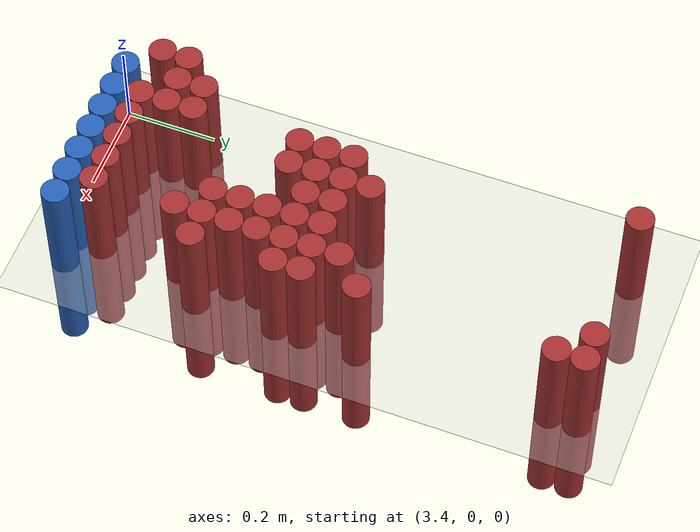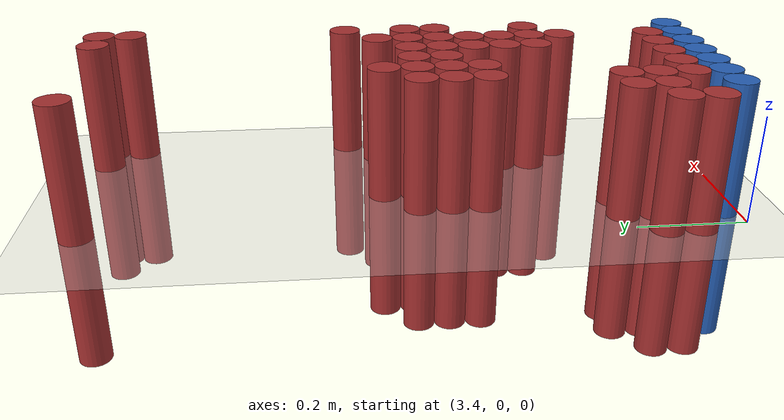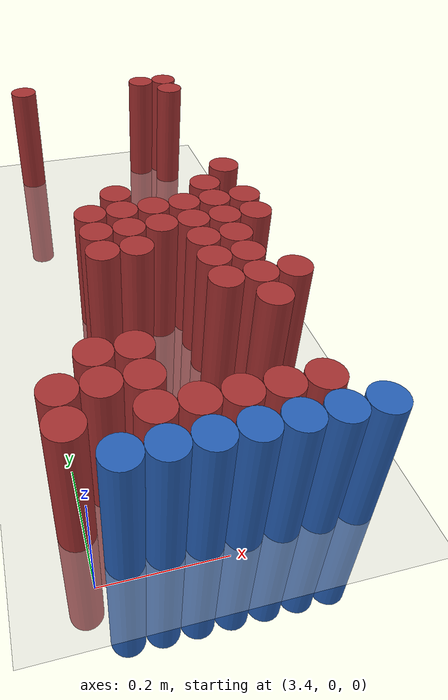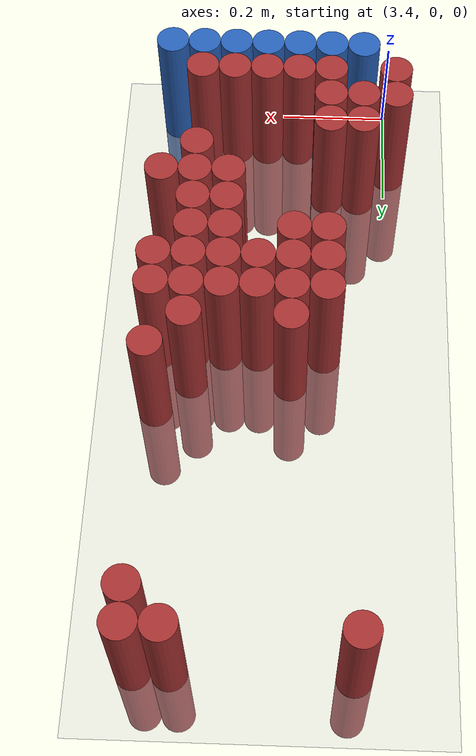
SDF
<sdf version="1.6">
 <world name="default">
  <model name="ground_plane">
   <static>1</static>
   <link name="link">
    <collision name="collision">
     <geometry><plane><normal>0 0 1</normal><size>100 100</size></plane></geometry>
     <surface><friction><ode><mu>100</mu><mu2>50</mu2></ode></friction></surface>
    </collision>
    <visual name="visual">
     <cast_shadows>0</cast_shadows>
     <geometry><plane><normal>0 0 1</normal><size>100 100</size></plane></geometry>
     <material>
      <script><uri>file://media/materials/scripts/gazebo.material</uri><name>Gazebo/Grey</name></script>
     </material>
    </visual>
   </link>
  </model>
  <model name="unit_cylinder_206">
   <static>1</static>
   <pose>3.450000 1.170000 0.000000 0.000000 0.000000 0.000000</pose>
   <link name="link">
    <inertial>
     <mass>1</mass>
     <inertia><ixx>0.145833</ixx><ixy>0</ixy><ixz>0</ixz><iyy>0.145833</iyy><iyz>0</iyz><izz>0.125</izz></inertia>
    </inertial>
    <collision name="collision">
     <geometry><cylinder><radius>0.030000</radius><length>0.5</length></cylinder></geometry>
    </collision>
    <visual name="visual">
     <geometry><cylinder><radius>0.030000</radius><length>0.5</length></cylinder></geometry>
     <material>
      <ambient>0.648000 0.192000 0.192000 1</ambient>
      <diffuse>0.648000 0.192000 0.192000 1</diffuse>
     </material>
     <material>
      <script><name>Gazebo/Grey</name><uri>file://media/materials/scripts/gazebo.material</uri></script>
     </material>
    </visual>
   </link>
  </model>
  <model name="unit_cylinder_207">
   <static>1</static>
   <pose>3.750000 1.170000 0.000000 0.000000 0.000000 0.000000</pose>
   <link name="link">
    <inertial>
     <mass>1</mass>
     <inertia><ixx>0.145833</ixx><ixy>0</ixy><ixz>0</ixz><iyy>0.145833</iyy><iyz>0</iyz><izz>0.125</izz></inertia>
    </inertial>
    <collision name="collision">
     <geometry><cylinder><radius>0.030000</radius><length>0.5</length></cylinder></geometry>
    </collision>
    <visual name="visual">
     <geometry><cylinder><radius>0.030000</radius><length>0.5</length></cylinder></geometry>
     <material>
      <ambient>0.648000 0.192000 0.192000 1</ambient>
      <diffuse>0.648000 0.192000 0.192000 1</diffuse>
     </material>
     <material>
      <script><name>Gazebo/Grey</name><uri>file://media/materials/scripts/gazebo.material</uri></script>
     </material>
    </visual>
   </link>
  </model>
  <model name="unit_cylinder_208">
   <static>1</static>
   <pose>3.810000 1.170000 0.000000 0.000000 0.000000 0.000000</pose>
   <link name="link">
    <inertial>
     <mass>1</mass>
     <inertia><ixx>0.145833</ixx><ixy>0</ixy><ixz>0</ixz><iyy>0.145833</iyy><iyz>0</iyz><izz>0.125</izz></inertia>
    </inertial>
    <collision name="collision">
     <geometry><cylinder><radius>0.030000</radius><length>0.5</length></cylinder></geometry>
    </collision>
    <visual name="visual">
     <geometry><cylinder><radius>0.030000</radius><length>0.5</length></cylinder></geometry>
     <material>
      <ambient>0.648000 0.192000 0.192000 1</ambient>
      <diffuse>0.648000 0.192000 0.192000 1</diffuse>
     </material>
     <material>
      <script><name>Gazebo/Grey</name><uri>file://media/materials/scripts/gazebo.material</uri></script>
     </material>
    </visual>
   </link>
  </model>
  <model name="unit_cylinder_211">
   <static>1</static>
   <pose>3.810000 1.110000 0.000000 0.000000 0.000000 0.000000</pose>
   <link name="link">
    <inertial>
     <mass>1</mass>
     <inertia><ixx>0.145833</ixx><ixy>0</ixy><ixz>0</ixz><iyy>0.145833</iyy><iyz>0</iyz><izz>0.125</izz></inertia>
    </inertial>
    <collision name="collision">
     <geometry><cylinder><radius>0.030000</radius><length>0.5</length></cylinder></geometry>
    </collision>
    <visual name="visual">
     <geometry><cylinder><radius>0.030000</radius><length>0.5</length></cylinder></geometry>
     <material>
      <ambient>0.648000 0.192000 0.192000 1</ambient>
      <diffuse>0.648000 0.192000 0.192000 1</diffuse>
     </material>
     <material>
      <script><name>Gazebo/Grey</name><uri>file://media/materials/scripts/gazebo.material</uri></script>
     </material>
    </visual>
   </link>
  </model>
  <model name="unit_cylinder_244">
   <static>1</static>
   <pose>3.810000 0.690000 0.000000 0.000000 0.000000 0.000000</pose>
   <link name="link">
    <inertial>
     <mass>1</mass>
     <inertia><ixx>0.145833</ixx><ixy>0</ixy><ixz>0</ixz><iyy>0.145833</iyy><iyz>0</iyz><izz>0.125</izz></inertia>
    </inertial>
    <collision name="collision">
     <geometry><cylinder><radius>0.030000</radius><length>0.5</length></cylinder></geometry>
    </collision>
    <visual name="visual">
     <geometry><cylinder><radius>0.030000</radius><length>0.5</length></cylinder></geometry>
     <material>
      <ambient>0.648000 0.192000 0.192000 1</ambient>
      <diffuse>0.648000 0.192000 0.192000 1</diffuse>
     </material>
     <material>
      <script><name>Gazebo/Grey</name><uri>file://media/materials/scripts/gazebo.material</uri></script>
     </material>
    </visual>
   </link>
  </model>
  <model name="unit_cylinder_245">
   <static>1</static>
   <pose>3.570000 0.630000 0.000000 0.000000 0.000000 0.000000</pose>
   <link name="link">
    <inertial>
     <mass>1</mass>
     <inertia><ixx>0.145833</ixx><ixy>0</ixy><ixz>0</ixz><iyy>0.145833</iyy><iyz>0</iyz><izz>0.125</izz></inertia>
    </inertial>
    <collision name="collision">
     <geometry><cylinder><radius>0.030000</radius><length>0.5</length></cylinder></geometry>
    </collision>
    <visual name="visual">
     <geometry><cylinder><radius>0.030000</radius><length>0.5</length></cylinder></geometry>
     <material>
      <ambient>0.648000 0.192000 0.192000 1</ambient>
      <diffuse>0.648000 0.192000 0.192000 1</diffuse>
     </material>
     <material>
      <script><name>Gazebo/Grey</name><uri>file://media/materials/scripts/gazebo.material</uri></script>
     </material>
    </visual>
   </link>
  </model>
  <model name="unit_cylinder_246">
   <static>1</static>
   <pose>3.750000 0.630000 0.000000 0.000000 0.000000 0.000000</pose>
   <link name="link">
    <inertial>
     <mass>1</mass>
     <inertia><ixx>0.145833</ixx><ixy>0</ixy><ixz>0</ixz><iyy>0.145833</iyy><iyz>0</iyz><izz>0.125</izz></inertia>
    </inertial>
    <collision name="collision">
     <geometry><cylinder><radius>0.030000</radius><length>0.5</length></cylinder></geometry>
    </collision>
    <visual name="visual">
     <geometry><cylinder><radius>0.030000</radius><length>0.5</length></cylinder></geometry>
     <material>
      <ambient>0.648000 0.192000 0.192000 1</ambient>
      <diffuse>0.648000 0.192000 0.192000 1</diffuse>
     </material>
     <material>
      <script><name>Gazebo/Grey</name><uri>file://media/materials/scripts/gazebo.material</uri></script>
     </material>
    </visual>
   </link>
  </model>
  <model name="unit_cylinder_247">
   <static>1</static>
   <pose>3.510000 0.570000 0.000000 0.000000 0.000000 0.000000</pose>
   <link name="link">
    <inertial>
     <mass>1</mass>
     <inertia><ixx>0.145833</ixx><ixy>0</ixy><ixz>0</ixz><iyy>0.145833</iyy><iyz>0</iyz><izz>0.125</izz></inertia>
    </inertial>
    <collision name="collision">
     <geometry><cylinder><radius>0.030000</radius><length>0.5</length></cylinder></geometry>
    </collision>
    <visual name="visual">
     <geometry><cylinder><radius>0.030000</radius><length>0.5</length></cylinder></geometry>
     <material>
      <ambient>0.648000 0.192000 0.192000 1</ambient>
      <diffuse>0.648000 0.192000 0.192000 1</diffuse>
     </material>
     <material>
      <script><name>Gazebo/Grey</name><uri>file://media/materials/scripts/gazebo.material</uri></script>
     </material>
    </visual>
   </link>
  </model>
  <model name="unit_cylinder_248">
   <static>1</static>
   <pose>3.570000 0.570000 0.000000 0.000000 0.000000 0.000000</pose>
   <link name="link">
    <inertial>
     <mass>1</mass>
     <inertia><ixx>0.145833</ixx><ixy>0</ixy><ixz>0</ixz><iyy>0.145833</iyy><iyz>0</iyz><izz>0.125</izz></inertia>
    </inertial>
    <collision name="collision">
     <geometry><cylinder><radius>0.030000</radius><length>0.5</length></cylinder></geometry>
    </collision>
    <visual name="visual">
     <geometry><cylinder><radius>0.030000</radius><length>0.5</length></cylinder></geometry>
     <material>
      <ambient>0.648000 0.192000 0.192000 1</ambient>
      <diffuse>0.648000 0.192000 0.192000 1</diffuse>
     </material>
     <material>
      <script><name>Gazebo/Grey</name><uri>file://media/materials/scripts/gazebo.material</uri></script>
     </material>
    </visual>
   </link>
  </model>
  <model name="unit_cylinder_249">
   <static>1</static>
   <pose>3.630000 0.570000 0.000000 0.000000 0.000000 0.000000</pose>
   <link name="link">
    <inertial>
     <mass>1</mass>
     <inertia><ixx>0.145833</ixx><ixy>0</ixy><ixz>0</ixz><iyy>0.145833</iyy><iyz>0</iyz><izz>0.125</izz></inertia>
    </inertial>
    <collision name="collision">
     <geometry><cylinder><radius>0.030000</radius><length>0.5</length></cylinder></geometry>
    </collision>
    <visual name="visual">
     <geometry><cylinder><radius>0.030000</radius><length>0.5</length></cylinder></geometry>
     <material>
      <ambient>0.648000 0.192000 0.192000 1</ambient>
      <diffuse>0.648000 0.192000 0.192000 1</diffuse>
     </material>
     <material>
      <script><name>Gazebo/Grey</name><uri>file://media/materials/scripts/gazebo.material</uri></script>
     </material>
    </visual>
   </link>
  </model>
  <model name="unit_cylinder_250">
   <static>1</static>
   <pose>3.690000 0.570000 0.000000 0.000000 0.000000 0.000000</pose>
   <link name="link">
    <inertial>
     <mass>1</mass>
     <inertia><ixx>0.145833</ixx><ixy>0</ixy><ixz>0</ixz><iyy>0.145833</iyy><iyz>0</iyz><izz>0.125</izz></inertia>
    </inertial>
    <collision name="collision">
     <geometry><cylinder><radius>0.030000</radius><length>0.5</length></cylinder></geometry>
    </collision>
    <visual name="visual">
     <geometry><cylinder><radius>0.030000</radius><length>0.5</length></cylinder></geometry>
     <material>
      <ambient>0.648000 0.192000 0.192000 1</ambient>
      <diffuse>0.648000 0.192000 0.192000 1</diffuse>
     </material>
     <material>
      <script><name>Gazebo/Grey</name><uri>file://media/materials/scripts/gazebo.material</uri></script>
     </material>
    </visual>
   </link>
  </model>
  <model name="unit_cylinder_251">
   <static>1</static>
   <pose>3.750000 0.570000 0.000000 0.000000 0.000000 0.000000</pose>
   <link name="link">
    <inertial>
     <mass>1</mass>
     <inertia><ixx>0.145833</ixx><ixy>0</ixy><ixz>0</ixz><iyy>0.145833</iyy><iyz>0</iyz><izz>0.125</izz></inertia>
    </inertial>
    <collision name="collision">
     <geometry><cylinder><radius>0.030000</radius><length>0.5</length></cylinder></geometry>
    </collision>
    <visual name="visual">
     <geometry><cylinder><radius>0.030000</radius><length>0.5</length></cylinder></geometry>
     <material>
      <ambient>0.648000 0.192000 0.192000 1</ambient>
      <diffuse>0.648000 0.192000 0.192000 1</diffuse>
     </material>
     <material>
      <script><name>Gazebo/Grey</name><uri>file://media/materials/scripts/gazebo.material</uri></script>
     </material>
    </visual>
   </link>
  </model>
  <model name="unit_cylinder_252">
   <static>1</static>
   <pose>3.810000 0.570000 0.000000 0.000000 0.000000 0.000000</pose>
   <link name="link">
    <inertial>
     <mass>1</mass>
     <inertia><ixx>0.145833</ixx><ixy>0</ixy><ixz>0</ixz><iyy>0.145833</iyy><iyz>0</iyz><izz>0.125</izz></inertia>
    </inertial>
    <collision name="collision">
     <geometry><cylinder><radius>0.030000</radius><length>0.5</length></cylinder></geometry>
    </collision>
    <visual name="visual">
     <geometry><cylinder><radius>0.030000</radius><length>0.5</length></cylinder></geometry>
     <material>
      <ambient>0.648000 0.192000 0.192000 1</ambient>
      <diffuse>0.648000 0.192000 0.192000 1</diffuse>
     </material>
     <material>
      <script><name>Gazebo/Grey</name><uri>file://media/materials/scripts/gazebo.material</uri></script>
     </material>
    </visual>
   </link>
  </model>
  <model name="unit_cylinder_253">
   <static>1</static>
   <pose>3.510000 0.510000 0.000000 0.000000 0.000000 0.000000</pose>
   <link name="link">
    <inertial>
     <mass>1</mass>
     <inertia><ixx>0.145833</ixx><ixy>0</ixy><ixz>0</ixz><iyy>0.145833</iyy><iyz>0</iyz><izz>0.125</izz></inertia>
    </inertial>
    <collision name="collision">
     <geometry><cylinder><radius>0.030000</radius><length>0.5</length></cylinder></geometry>
    </collision>
    <visual name="visual">
     <geometry><cylinder><radius>0.030000</radius><length>0.5</length></cylinder></geometry>
     <material>
      <ambient>0.648000 0.192000 0.192000 1</ambient>
      <diffuse>0.648000 0.192000 0.192000 1</diffuse>
     </material>
     <material>
      <script><name>Gazebo/Grey</name><uri>file://media/materials/scripts/gazebo.material</uri></script>
     </material>
    </visual>
   </link>
  </model>
  <model name="unit_cylinder_254">
   <static>1</static>
   <pose>3.570000 0.510000 0.000000 0.000000 0.000000 0.000000</pose>
   <link name="link">
    <inertial>
     <mass>1</mass>
     <inertia><ixx>0.145833</ixx><ixy>0</ixy><ixz>0</ixz><iyy>0.145833</iyy><iyz>0</iyz><izz>0.125</izz></inertia>
    </inertial>
    <collision name="collision">
     <geometry><cylinder><radius>0.030000</radius><length>0.5</length></cylinder></geometry>
    </collision>
    <visual name="visual">
     <geometry><cylinder><radius>0.030000</radius><length>0.5</length></cylinder></geometry>
     <material>
      <ambient>0.648000 0.192000 0.192000 1</ambient>
      <diffuse>0.648000 0.192000 0.192000 1</diffuse>
     </material>
     <material>
      <script><name>Gazebo/Grey</name><uri>file://media/materials/scripts/gazebo.material</uri></script>
     </material>
    </visual>
   </link>
  </model>
  <model name="unit_cylinder_255">
   <static>1</static>
   <pose>3.630000 0.510000 0.000000 0.000000 0.000000 0.000000</pose>
   <link name="link">
    <inertial>
     <mass>1</mass>
     <inertia><ixx>0.145833</ixx><ixy>0</ixy><ixz>0</ixz><iyy>0.145833</iyy><iyz>0</iyz><izz>0.125</izz></inertia>
    </inertial>
    <collision name="collision">
     <geometry><cylinder><radius>0.030000</radius><length>0.5</length></cylinder></geometry>
    </collision>
    <visual name="visual">
     <geometry><cylinder><radius>0.030000</radius><length>0.5</length></cylinder></geometry>
     <material>
      <ambient>0.648000 0.192000 0.192000 1</ambient>
      <diffuse>0.648000 0.192000 0.192000 1</diffuse>
     </material>
     <material>
      <script><name>Gazebo/Grey</name><uri>file://media/materials/scripts/gazebo.material</uri></script>
     </material>
    </visual>
   </link>
  </model>
  <model name="unit_cylinder_256">
   <static>1</static>
   <pose>3.690000 0.510000 0.000000 0.000000 0.000000 0.000000</pose>
   <link name="link">
    <inertial>
     <mass>1</mass>
     <inertia><ixx>0.145833</ixx><ixy>0</ixy><ixz>0</ixz><iyy>0.145833</iyy><iyz>0</iyz><izz>0.125</izz></inertia>
    </inertial>
    <collision name="collision">
     <geometry><cylinder><radius>0.030000</radius><length>0.5</length></cylinder></geometry>
    </collision>
    <visual name="visual">
     <geometry><cylinder><radius>0.030000</radius><length>0.5</length></cylinder></geometry>
     <material>
      <ambient>0.648000 0.192000 0.192000 1</ambient>
      <diffuse>0.648000 0.192000 0.192000 1</diffuse>
     </material>
     <material>
      <script><name>Gazebo/Grey</name><uri>file://media/materials/scripts/gazebo.material</uri></script>
     </material>
    </visual>
   </link>
  </model>
  <model name="unit_cylinder_257">
   <static>1</static>
   <pose>3.750000 0.510000 0.000000 0.000000 0.000000 0.000000</pose>
   <link name="link">
    <inertial>
     <mass>1</mass>
     <inertia><ixx>0.145833</ixx><ixy>0</ixy><ixz>0</ixz><iyy>0.145833</iyy><iyz>0</iyz><izz>0.125</izz></inertia>
    </inertial>
    <collision name="collision">
     <geometry><cylinder><radius>0.030000</radius><length>0.5</length></cylinder></geometry>
    </collision>
    <visual name="visual">
     <geometry><cylinder><radius>0.030000</radius><length>0.5</length></cylinder></geometry>
     <material>
      <ambient>0.648000 0.192000 0.192000 1</ambient>
      <diffuse>0.648000 0.192000 0.192000 1</diffuse>
     </material>
     <material>
      <script><name>Gazebo/Grey</name><uri>file://media/materials/scripts/gazebo.material</uri></script>
     </material>
    </visual>
   </link>
  </model>
  <model name="unit_cylinder_258">
   <static>1</static>
   <pose>3.810000 0.510000 0.000000 0.000000 0.000000 0.000000</pose>
   <link name="link">
    <inertial>
     <mass>1</mass>
     <inertia><ixx>0.145833</ixx><ixy>0</ixy><ixz>0</ixz><iyy>0.145833</iyy><iyz>0</iyz><izz>0.125</izz></inertia>
    </inertial>
    <collision name="collision">
     <geometry><cylinder><radius>0.030000</radius><length>0.5</length></cylinder></geometry>
    </collision>
    <visual name="visual">
     <geometry><cylinder><radius>0.030000</radius><length>0.5</length></cylinder></geometry>
     <material>
      <ambient>0.648000 0.192000 0.192000 1</ambient>
      <diffuse>0.648000 0.192000 0.192000 1</diffuse>
     </material>
     <material>
      <script><name>Gazebo/Grey</name><uri>file://media/materials/scripts/gazebo.material</uri></script>
     </material>
    </visual>
   </link>
  </model>
  <model name="unit_cylinder_259">
   <static>1</static>
   <pose>3.510000 0.450000 0.000000 0.000000 0.000000 0.000000</pose>
   <link name="link">
    <inertial>
     <mass>1</mass>
     <inertia><ixx>0.145833</ixx><ixy>0</ixy><ixz>0</ixz><iyy>0.145833</iyy><iyz>0</iyz><izz>0.125</izz></inertia>
    </inertial>
    <collision name="collision">
     <geometry><cylinder><radius>0.030000</radius><length>0.5</length></cylinder></geometry>
    </collision>
    <visual name="visual">
     <geometry><cylinder><radius>0.030000</radius><length>0.5</length></cylinder></geometry>
     <material>
      <ambient>0.648000 0.192000 0.192000 1</ambient>
      <diffuse>0.648000 0.192000 0.192000 1</diffuse>
     </material>
     <material>
      <script><name>Gazebo/Grey</name><uri>file://media/materials/scripts/gazebo.material</uri></script>
     </material>
    </visual>
   </link>
  </model>
  <model name="unit_cylinder_260">
   <static>1</static>
   <pose>3.570000 0.450000 0.000000 0.000000 0.000000 0.000000</pose>
   <link name="link">
    <inertial>
     <mass>1</mass>
     <inertia><ixx>0.145833</ixx><ixy>0</ixy><ixz>0</ixz><iyy>0.145833</iyy><iyz>0</iyz><izz>0.125</izz></inertia>
    </inertial>
    <collision name="collision">
     <geometry><cylinder><radius>0.030000</radius><length>0.5</length></cylinder></geometry>
    </collision>
    <visual name="visual">
     <geometry><cylinder><radius>0.030000</radius><length>0.5</length></cylinder></geometry>
     <material>
      <ambient>0.648000 0.192000 0.192000 1</ambient>
      <diffuse>0.648000 0.192000 0.192000 1</diffuse>
     </material>
     <material>
      <script><name>Gazebo/Grey</name><uri>file://media/materials/scripts/gazebo.material</uri></script>
     </material>
    </visual>
   </link>
  </model>
  <model name="unit_cylinder_261">
   <static>1</static>
   <pose>3.690000 0.450000 0.000000 0.000000 0.000000 0.000000</pose>
   <link name="link">
    <inertial>
     <mass>1</mass>
     <inertia><ixx>0.145833</ixx><ixy>0</ixy><ixz>0</ixz><iyy>0.145833</iyy><iyz>0</iyz><izz>0.125</izz></inertia>
    </inertial>
    <collision name="collision">
     <geometry><cylinder><radius>0.030000</radius><length>0.5</length></cylinder></geometry>
    </collision>
    <visual name="visual">
     <geometry><cylinder><radius>0.030000</radius><length>0.5</length></cylinder></geometry>
     <material>
      <ambient>0.648000 0.192000 0.192000 1</ambient>
      <diffuse>0.648000 0.192000 0.192000 1</diffuse>
     </material>
     <material>
      <script><name>Gazebo/Grey</name><uri>file://media/materials/scripts/gazebo.material</uri></script>
     </material>
    </visual>
   </link>
  </model>
  <model name="unit_cylinder_262">
   <static>1</static>
   <pose>3.750000 0.450000 0.000000 0.000000 0.000000 0.000000</pose>
   <link name="link">
    <inertial>
     <mass>1</mass>
     <inertia><ixx>0.145833</ixx><ixy>0</ixy><ixz>0</ixz><iyy>0.145833</iyy><iyz>0</iyz><izz>0.125</izz></inertia>
    </inertial>
    <collision name="collision">
     <geometry><cylinder><radius>0.030000</radius><length>0.5</length></cylinder></geometry>
    </collision>
    <visual name="visual">
     <geometry><cylinder><radius>0.030000</radius><length>0.5</length></cylinder></geometry>
     <material>
      <ambient>0.648000 0.192000 0.192000 1</ambient>
      <diffuse>0.648000 0.192000 0.192000 1</diffuse>
     </material>
     <material>
      <script><name>Gazebo/Grey</name><uri>file://media/materials/scripts/gazebo.material</uri></script>
     </material>
    </visual>
   </link>
  </model>
  <model name="unit_cylinder_267">
   <static>1</static>
   <pose>3.690000 0.390000 0.000000 0.000000 0.000000 0.000000</pose>
   <link name="link">
    <inertial>
     <mass>1</mass>
     <inertia><ixx>0.145833</ixx><ixy>0</ixy><ixz>0</ixz><iyy>0.145833</iyy><iyz>0</iyz><izz>0.125</izz></inertia>
    </inertial>
    <collision name="collision">
     <geometry><cylinder><radius>0.030000</radius><length>0.5</length></cylinder></geometry>
    </collision>
    <visual name="visual">
     <geometry><cylinder><radius>0.030000</radius><length>0.5</length></cylinder></geometry>
     <material>
      <ambient>0.648000 0.192000 0.192000 1</ambient>
      <diffuse>0.648000 0.192000 0.192000 1</diffuse>
     </material>
     <material>
      <script><name>Gazebo/Grey</name><uri>file://media/materials/scripts/gazebo.material</uri></script>
     </material>
    </visual>
   </link>
  </model>
  <model name="unit_cylinder_268">
   <static>1</static>
   <pose>3.750000 0.390000 0.000000 0.000000 0.000000 0.000000</pose>
   <link name="link">
    <inertial>
     <mass>1</mass>
     <inertia><ixx>0.145833</ixx><ixy>0</ixy><ixz>0</ixz><iyy>0.145833</iyy><iyz>0</iyz><izz>0.125</izz></inertia>
    </inertial>
    <collision name="collision">
     <geometry><cylinder><radius>0.030000</radius><length>0.5</length></cylinder></geometry>
    </collision>
    <visual name="visual">
     <geometry><cylinder><radius>0.030000</radius><length>0.5</length></cylinder></geometry>
     <material>
      <ambient>0.648000 0.192000 0.192000 1</ambient>
      <diffuse>0.648000 0.192000 0.192000 1</diffuse>
     </material>
     <material>
      <script><name>Gazebo/Grey</name><uri>file://media/materials/scripts/gazebo.material</uri></script>
     </material>
    </visual>
   </link>
  </model>
  <model name="unit_cylinder_274">
   <static>1</static>
   <pose>3.690000 0.330000 0.000000 0.000000 0.000000 0.000000</pose>
   <link name="link">
    <inertial>
     <mass>1</mass>
     <inertia><ixx>0.145833</ixx><ixy>0</ixy><ixz>0</ixz><iyy>0.145833</iyy><iyz>0</iyz><izz>0.125</izz></inertia>
    </inertial>
    <collision name="collision">
     <geometry><cylinder><radius>0.030000</radius><length>0.5</length></cylinder></geometry>
    </collision>
    <visual name="visual">
     <geometry><cylinder><radius>0.030000</radius><length>0.5</length></cylinder></geometry>
     <material>
      <ambient>0.648000 0.192000 0.192000 1</ambient>
      <diffuse>0.648000 0.192000 0.192000 1</diffuse>
     </material>
     <material>
      <script><name>Gazebo/Grey</name><uri>file://media/materials/scripts/gazebo.material</uri></script>
     </material>
    </visual>
   </link>
  </model>
  <model name="unit_cylinder_275">
   <static>1</static>
   <pose>3.750000 0.330000 0.000000 0.000000 0.000000 0.000000</pose>
   <link name="link">
    <inertial>
     <mass>1</mass>
     <inertia><ixx>0.145833</ixx><ixy>0</ixy><ixz>0</ixz><iyy>0.145833</iyy><iyz>0</iyz><izz>0.125</izz></inertia>
    </inertial>
    <collision name="collision">
     <geometry><cylinder><radius>0.030000</radius><length>0.5</length></cylinder></geometry>
    </collision>
    <visual name="visual">
     <geometry><cylinder><radius>0.030000</radius><length>0.5</length></cylinder></geometry>
     <material>
      <ambient>0.648000 0.192000 0.192000 1</ambient>
      <diffuse>0.648000 0.192000 0.192000 1</diffuse>
     </material>
     <material>
      <script><name>Gazebo/Grey</name><uri>file://media/materials/scripts/gazebo.material</uri></script>
     </material>
    </visual>
   </link>
  </model>
  <model name="unit_cylinder_276">
   <static>1</static>
   <pose>3.810000 0.330000 0.000000 0.000000 0.000000 0.000000</pose>
   <link name="link">
    <inertial>
     <mass>1</mass>
     <inertia><ixx>0.145833</ixx><ixy>0</ixy><ixz>0</ixz><iyy>0.145833</iyy><iyz>0</iyz><izz>0.125</izz></inertia>
    </inertial>
    <collision name="collision">
     <geometry><cylinder><radius>0.030000</radius><length>0.5</length></cylinder></geometry>
    </collision>
    <visual name="visual">
     <geometry><cylinder><radius>0.030000</radius><length>0.5</length></cylinder></geometry>
     <material>
      <ambient>0.648000 0.192000 0.192000 1</ambient>
      <diffuse>0.648000 0.192000 0.192000 1</diffuse>
     </material>
     <material>
      <script><name>Gazebo/Grey</name><uri>file://media/materials/scripts/gazebo.material</uri></script>
     </material>
    </visual>
   </link>
  </model>
  <model name="unit_cylinder_279">
   <static>1</static>
   <pose>3.750000 0.270000 0.000000 0.000000 0.000000 0.000000</pose>
   <link name="link">
    <inertial>
     <mass>1</mass>
     <inertia><ixx>0.145833</ixx><ixy>0</ixy><ixz>0</ixz><iyy>0.145833</iyy><iyz>0</iyz><izz>0.125</izz></inertia>
    </inertial>
    <collision name="collision">
     <geometry><cylinder><radius>0.030000</radius><length>0.5</length></cylinder></geometry>
    </collision>
    <visual name="visual">
     <geometry><cylinder><radius>0.030000</radius><length>0.5</length></cylinder></geometry>
     <material>
      <ambient>0.648000 0.192000 0.192000 1</ambient>
      <diffuse>0.648000 0.192000 0.192000 1</diffuse>
     </material>
     <material>
      <script><name>Gazebo/Grey</name><uri>file://media/materials/scripts/gazebo.material</uri></script>
     </material>
    </visual>
   </link>
  </model>
  <model name="unit_cylinder_281">
   <static>1</static>
   <pose>3.450000 0.210000 0.000000 0.000000 0.000000 0.000000</pose>
   <link name="link">
    <inertial>
     <mass>1</mass>
     <inertia><ixx>0.145833</ixx><ixy>0</ixy><ixz>0</ixz><iyy>0.145833</iyy><iyz>0</iyz><izz>0.125</izz></inertia>
    </inertial>
    <collision name="collision">
     <geometry><cylinder><radius>0.030000</radius><length>0.5</length></cylinder></geometry>
    </collision>
    <visual name="visual">
     <geometry><cylinder><radius>0.030000</radius><length>0.5</length></cylinder></geometry>
     <material>
      <ambient>0.648000 0.192000 0.192000 1</ambient>
      <diffuse>0.648000 0.192000 0.192000 1</diffuse>
     </material>
     <material>
      <script><name>Gazebo/Grey</name><uri>file://media/materials/scripts/gazebo.material</uri></script>
     </material>
    </visual>
   </link>
  </model>
  <model name="unit_cylinder_282">
   <static>1</static>
   <pose>3.510000 0.210000 0.000000 0.000000 0.000000 0.000000</pose>
   <link name="link">
    <inertial>
     <mass>1</mass>
     <inertia><ixx>0.145833</ixx><ixy>0</ixy><ixz>0</ixz><iyy>0.145833</iyy><iyz>0</iyz><izz>0.125</izz></inertia>
    </inertial>
    <collision name="collision">
     <geometry><cylinder><radius>0.030000</radius><length>0.5</length></cylinder></geometry>
    </collision>
    <visual name="visual">
     <geometry><cylinder><radius>0.030000</radius><length>0.5</length></cylinder></geometry>
     <material>
      <ambient>0.648000 0.192000 0.192000 1</ambient>
      <diffuse>0.648000 0.192000 0.192000 1</diffuse>
     </material>
     <material>
      <script><name>Gazebo/Grey</name><uri>file://media/materials/scripts/gazebo.material</uri></script>
     </material>
    </visual>
   </link>
  </model>
  <model name="unit_cylinder_285">
   <static>1</static>
   <pose>3.390000 0.150000 0.000000 0.000000 0.000000 0.000000</pose>
   <link name="link">
    <inertial>
     <mass>1</mass>
     <inertia><ixx>0.145833</ixx><ixy>0</ixy><ixz>0</ixz><iyy>0.145833</iyy><iyz>0</iyz><izz>0.125</izz></inertia>
    </inertial>
    <collision name="collision">
     <geometry><cylinder><radius>0.030000</radius><length>0.5</length></cylinder></geometry>
    </collision>
    <visual name="visual">
     <geometry><cylinder><radius>0.030000</radius><length>0.5</length></cylinder></geometry>
     <material>
      <ambient>0.648000 0.192000 0.192000 1</ambient>
      <diffuse>0.648000 0.192000 0.192000 1</diffuse>
     </material>
     <material>
      <script><name>Gazebo/Grey</name><uri>file://media/materials/scripts/gazebo.material</uri></script>
     </material>
    </visual>
   </link>
  </model>
  <model name="unit_cylinder_286">
   <static>1</static>
   <pose>3.450000 0.150000 0.000000 0.000000 0.000000 0.000000</pose>
   <link name="link">
    <inertial>
     <mass>1</mass>
     <inertia><ixx>0.145833</ixx><ixy>0</ixy><ixz>0</ixz><iyy>0.145833</iyy><iyz>0</iyz><izz>0.125</izz></inertia>
    </inertial>
    <collision name="collision">
     <geometry><cylinder><radius>0.030000</radius><length>0.5</length></cylinder></geometry>
    </collision>
    <visual name="visual">
     <geometry><cylinder><radius>0.030000</radius><length>0.5</length></cylinder></geometry>
     <material>
      <ambient>0.648000 0.192000 0.192000 1</ambient>
      <diffuse>0.648000 0.192000 0.192000 1</diffuse>
     </material>
     <material>
      <script><name>Gazebo/Grey</name><uri>file://media/materials/scripts/gazebo.material</uri></script>
     </material>
    </visual>
   </link>
  </model>
  <model name="unit_cylinder_287">
   <static>1</static>
   <pose>3.510000 0.150000 0.000000 0.000000 0.000000 0.000000</pose>
   <link name="link">
    <inertial>
     <mass>1</mass>
     <inertia><ixx>0.145833</ixx><ixy>0</ixy><ixz>0</ixz><iyy>0.145833</iyy><iyz>0</iyz><izz>0.125</izz></inertia>
    </inertial>
    <collision name="collision">
     <geometry><cylinder><radius>0.030000</radius><length>0.5</length></cylinder></geometry>
    </collision>
    <visual name="visual">
     <geometry><cylinder><radius>0.030000</radius><length>0.5</length></cylinder></geometry>
     <material>
      <ambient>0.648000 0.192000 0.192000 1</ambient>
      <diffuse>0.648000 0.192000 0.192000 1</diffuse>
     </material>
     <material>
      <script><name>Gazebo/Grey</name><uri>file://media/materials/scripts/gazebo.material</uri></script>
     </material>
    </visual>
   </link>
  </model>
  <model name="unit_cylinder_295">
   <static>1</static>
   <pose>3.390000 0.090000 0.000000 0.000000 0.000000 0.000000</pose>
   <link name="link">
    <inertial>
     <mass>1</mass>
     <inertia><ixx>0.145833</ixx><ixy>0</ixy><ixz>0</ixz><iyy>0.145833</iyy><iyz>0</iyz><izz>0.125</izz></inertia>
    </inertial>
    <collision name="collision">
     <geometry><cylinder><radius>0.030000</radius><length>0.5</length></cylinder></geometry>
    </collision>
    <visual name="visual">
     <geometry><cylinder><radius>0.030000</radius><length>0.5</length></cylinder></geometry>
     <material>
      <ambient>0.648000 0.192000 0.192000 1</ambient>
      <diffuse>0.648000 0.192000 0.192000 1</diffuse>
     </material>
     <material>
      <script><name>Gazebo/Grey</name><uri>file://media/materials/scripts/gazebo.material</uri></script>
     </material>
    </visual>
   </link>
  </model>
  <model name="unit_cylinder_296">
   <static>1</static>
   <pose>3.510000 0.090000 0.000000 0.000000 0.000000 0.000000</pose>
   <link name="link">
    <inertial>
     <mass>1</mass>
     <inertia><ixx>0.145833</ixx><ixy>0</ixy><ixz>0</ixz><iyy>0.145833</iyy><iyz>0</iyz><izz>0.125</izz></inertia>
    </inertial>
    <collision name="collision">
     <geometry><cylinder><radius>0.030000</radius><length>0.5</length></cylinder></geometry>
    </collision>
    <visual name="visual">
     <geometry><cylinder><radius>0.030000</radius><length>0.5</length></cylinder></geometry>
     <material>
      <ambient>0.648000 0.192000 0.192000 1</ambient>
      <diffuse>0.648000 0.192000 0.192000 1</diffuse>
     </material>
     <material>
      <script><name>Gazebo/Grey</name><uri>file://media/materials/scripts/gazebo.material</uri></script>
     </material>
    </visual>
   </link>
  </model>
  <model name="unit_cylinder_297">
   <static>1</static>
   <pose>3.570000 0.090000 0.000000 0.000000 0.000000 0.000000</pose>
   <link name="link">
    <inertial>
     <mass>1</mass>
     <inertia><ixx>0.145833</ixx><ixy>0</ixy><ixz>0</ixz><iyy>0.145833</iyy><iyz>0</iyz><izz>0.125</izz></inertia>
    </inertial>
    <collision name="collision">
     <geometry><cylinder><radius>0.030000</radius><length>0.5</length></cylinder></geometry>
    </collision>
    <visual name="visual">
     <geometry><cylinder><radius>0.030000</radius><length>0.5</length></cylinder></geometry>
     <material>
      <ambient>0.648000 0.192000 0.192000 1</ambient>
      <diffuse>0.648000 0.192000 0.192000 1</diffuse>
     </material>
     <material>
      <script><name>Gazebo/Grey</name><uri>file://media/materials/scripts/gazebo.material</uri></script>
     </material>
    </visual>
   </link>
  </model>
  <model name="unit_cylinder_298">
   <static>1</static>
   <pose>3.630000 0.090000 0.000000 0.000000 0.000000 0.000000</pose>
   <link name="link">
    <inertial>
     <mass>1</mass>
     <inertia><ixx>0.145833</ixx><ixy>0</ixy><ixz>0</ixz><iyy>0.145833</iyy><iyz>0</iyz><izz>0.125</izz></inertia>
    </inertial>
    <collision name="collision">
     <geometry><cylinder><radius>0.030000</radius><length>0.5</length></cylinder></geometry>
    </collision>
    <visual name="visual">
     <geometry><cylinder><radius>0.030000</radius><length>0.5</length></cylinder></geometry>
     <material>
      <ambient>0.648000 0.192000 0.192000 1</ambient>
      <diffuse>0.648000 0.192000 0.192000 1</diffuse>
     </material>
     <material>
      <script><name>Gazebo/Grey</name><uri>file://media/materials/scripts/gazebo.material</uri></script>
     </material>
    </visual>
   </link>
  </model>
  <model name="unit_cylinder_299">
   <static>1</static>
   <pose>3.690000 0.090000 0.000000 0.000000 0.000000 0.000000</pose>
   <link name="link">
    <inertial>
     <mass>1</mass>
     <inertia><ixx>0.145833</ixx><ixy>0</ixy><ixz>0</ixz><iyy>0.145833</iyy><iyz>0</iyz><izz>0.125</izz></inertia>
    </inertial>
    <collision name="collision">
     <geometry><cylinder><radius>0.030000</radius><length>0.5</length></cylinder></geometry>
    </collision>
    <visual name="visual">
     <geometry><cylinder><radius>0.030000</radius><length>0.5</length></cylinder></geometry>
     <material>
      <ambient>0.648000 0.192000 0.192000 1</ambient>
      <diffuse>0.648000 0.192000 0.192000 1</diffuse>
     </material>
     <material>
      <script><name>Gazebo/Grey</name><uri>file://media/materials/scripts/gazebo.material</uri></script>
     </material>
    </visual>
   </link>
  </model>
  <model name="unit_cylinder_300">
   <static>1</static>
   <pose>3.750000 0.090000 0.000000 0.000000 0.000000 0.000000</pose>
   <link name="link">
    <inertial>
     <mass>1</mass>
     <inertia><ixx>0.145833</ixx><ixy>0</ixy><ixz>0</ixz><iyy>0.145833</iyy><iyz>0</iyz><izz>0.125</izz></inertia>
    </inertial>
    <collision name="collision">
     <geometry><cylinder><radius>0.030000</radius><length>0.5</length></cylinder></geometry>
    </collision>
    <visual name="visual">
     <geometry><cylinder><radius>0.030000</radius><length>0.5</length></cylinder></geometry>
     <material>
      <ambient>0.648000 0.192000 0.192000 1</ambient>
      <diffuse>0.648000 0.192000 0.192000 1</diffuse>
     </material>
     <material>
      <script><name>Gazebo/Grey</name><uri>file://media/materials/scripts/gazebo.material</uri></script>
     </material>
    </visual>
   </link>
  </model>
  <model name="unit_cylinder_324">
   <static>1</static>
   <pose>3.450000 0.030000 0.000000 0.000000 0.000000 0.000000</pose>
   <link name="link">
    <inertial>
     <mass>1</mass>
     <inertia><ixx>0.145833</ixx><ixy>0</ixy><ixz>0</ixz><iyy>0.145833</iyy><iyz>0</iyz><izz>0.125</izz></inertia>
    </inertial>
    <collision name="collision">
     <geometry><cylinder><radius>0.030000</radius><length>0.5</length></cylinder></geometry>
    </collision>
    <visual name="visual">
     <geometry><cylinder><radius>0.030000</radius><length>0.5</length></cylinder></geometry>
     <material>
      <ambient>0.152000 0.379000 0.720000 1</ambient>
      <diffuse>0.152000 0.379000 0.720000 1</diffuse>
     </material>
     <material>
      <script><name>Gazebo/Grey</name><uri>file://media/materials/scripts/gazebo.material</uri></script>
     </material>
    </visual>
   </link>
  </model>
  <model name="unit_cylinder_325">
   <static>1</static>
   <pose>3.510000 0.030000 0.000000 0.000000 0.000000 0.000000</pose>
   <link name="link">
    <inertial>
     <mass>1</mass>
     <inertia><ixx>0.145833</ixx><ixy>0</ixy><ixz>0</ixz><iyy>0.145833</iyy><iyz>0</iyz><izz>0.125</izz></inertia>
    </inertial>
    <collision name="collision">
     <geometry><cylinder><radius>0.030000</radius><length>0.5</length></cylinder></geometry>
    </collision>
    <visual name="visual">
     <geometry><cylinder><radius>0.030000</radius><length>0.5</length></cylinder></geometry>
     <material>
      <ambient>0.152000 0.379000 0.720000 1</ambient>
      <diffuse>0.152000 0.379000 0.720000 1</diffuse>
     </material>
     <material>
      <script><name>Gazebo/Grey</name><uri>file://media/materials/scripts/gazebo.material</uri></script>
     </material>
    </visual>
   </link>
  </model>
  <model name="unit_cylinder_326">
   <static>1</static>
   <pose>3.570000 0.030000 0.000000 0.000000 0.000000 0.000000</pose>
   <link name="link">
    <inertial>
     <mass>1</mass>
     <inertia><ixx>0.145833</ixx><ixy>0</ixy><ixz>0</ixz><iyy>0.145833</iyy><iyz>0</iyz><izz>0.125</izz></inertia>
    </inertial>
    <collision name="collision">
     <geometry><cylinder><radius>0.030000</radius><length>0.5</length></cylinder></geometry>
    </collision>
    <visual name="visual">
     <geometry><cylinder><radius>0.030000</radius><length>0.5</length></cylinder></geometry>
     <material>
      <ambient>0.152000 0.379000 0.720000 1</ambient>
      <diffuse>0.152000 0.379000 0.720000 1</diffuse>
     </material>
     <material>
      <script><name>Gazebo/Grey</name><uri>file://media/materials/scripts/gazebo.material</uri></script>
     </material>
    </visual>
   </link>
  </model>
  <model name="unit_cylinder_327">
   <static>1</static>
   <pose>3.630000 0.030000 0.000000 0.000000 0.000000 0.000000</pose>
   <link name="link">
    <inertial>
     <mass>1</mass>
     <inertia><ixx>0.145833</ixx><ixy>0</ixy><ixz>0</ixz><iyy>0.145833</iyy><iyz>0</iyz><izz>0.125</izz></inertia>
    </inertial>
    <collision name="collision">
     <geometry><cylinder><radius>0.030000</radius><length>0.5</length></cylinder></geometry>
    </collision>
    <visual name="visual">
     <geometry><cylinder><radius>0.030000</radius><length>0.5</length></cylinder></geometry>
     <material>
      <ambient>0.152000 0.379000 0.720000 1</ambient>
      <diffuse>0.152000 0.379000 0.720000 1</diffuse>
     </material>
     <material>
      <script><name>Gazebo/Grey</name><uri>file://media/materials/scripts/gazebo.material</uri></script>
     </material>
    </visual>
   </link>
  </model>
  <model name="unit_cylinder_328">
   <static>1</static>
   <pose>3.690000 0.030000 0.000000 0.000000 0.000000 0.000000</pose>
   <link name="link">
    <inertial>
     <mass>1</mass>
     <inertia><ixx>0.145833</ixx><ixy>0</ixy><ixz>0</ixz><iyy>0.145833</iyy><iyz>0</iyz><izz>0.125</izz></inertia>
    </inertial>
    <collision name="collision">
     <geometry><cylinder><radius>0.030000</radius><length>0.5</length></cylinder></geometry>
    </collision>
    <visual name="visual">
     <geometry><cylinder><radius>0.030000</radius><length>0.5</length></cylinder></geometry>
     <material>
      <ambient>0.152000 0.379000 0.720000 1</ambient>
      <diffuse>0.152000 0.379000 0.720000 1</diffuse>
     </material>
     <material>
      <script><name>Gazebo/Grey</name><uri>file://media/materials/scripts/gazebo.material</uri></script>
     </material>
    </visual>
   </link>
  </model>
  <model name="unit_cylinder_329">
   <static>1</static>
   <pose>3.750000 0.030000 0.000000 0.000000 0.000000 0.000000</pose>
   <link name="link">
    <inertial>
     <mass>1</mass>
     <inertia><ixx>0.145833</ixx><ixy>0</ixy><ixz>0</ixz><iyy>0.145833</iyy><iyz>0</iyz><izz>0.125</izz></inertia>
    </inertial>
    <collision name="collision">
     <geometry><cylinder><radius>0.030000</radius><length>0.5</length></cylinder></geometry>
    </collision>
    <visual name="visual">
     <geometry><cylinder><radius>0.030000</radius><length>0.5</length></cylinder></geometry>
     <material>
      <ambient>0.152000 0.379000 0.720000 1</ambient>
      <diffuse>0.152000 0.379000 0.720000 1</diffuse>
     </material>
     <material>
      <script><name>Gazebo/Grey</name><uri>file://media/materials/scripts/gazebo.material</uri></script>
     </material>
    </visual>
   </link>
  </model>
  <model name="unit_cylinder_330">
   <static>1</static>
   <pose>3.810000 0.030000 0.000000 0.000000 0.000000 0.000000</pose>
   <link name="link">
    <inertial>
     <mass>1</mass>
     <inertia><ixx>0.145833</ixx><ixy>0</ixy><ixz>0</ixz><iyy>0.145833</iyy><iyz>0</iyz><izz>0.125</izz></inertia>
    </inertial>
    <collision name="collision">
     <geometry><cylinder><radius>0.030000</radius><length>0.5</length></cylinder></geometry>
    </collision>
    <visual name="visual">
     <geometry><cylinder><radius>0.030000</radius><length>0.5</length></cylinder></geometry>
     <material>
      <ambient>0.152000 0.379000 0.720000 1</ambient>
      <diffuse>0.152000 0.379000 0.720000 1</diffuse>
     </material>
     <material>
      <script><name>Gazebo/Grey</name><uri>file://media/materials/scripts/gazebo.material</uri></script>
     </material>
    </visual>
   </link>
  </model>
 </world>
</sdf>
